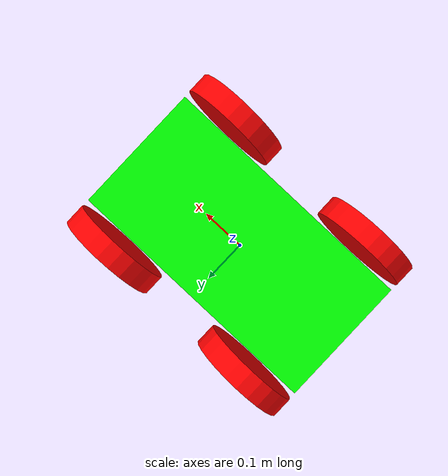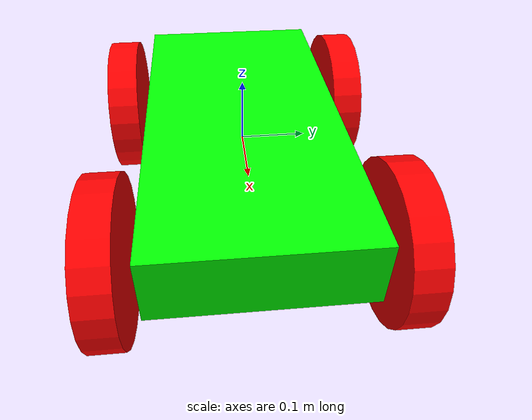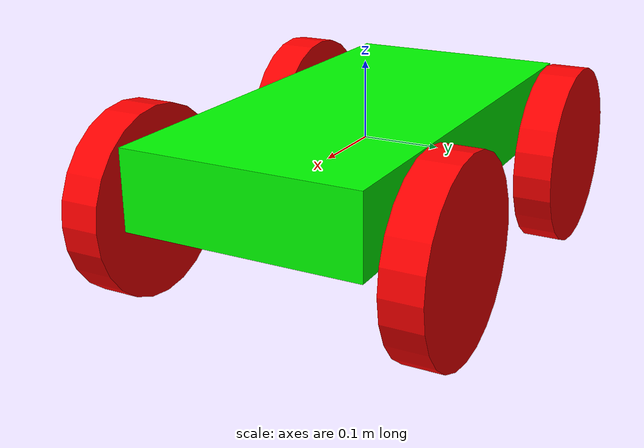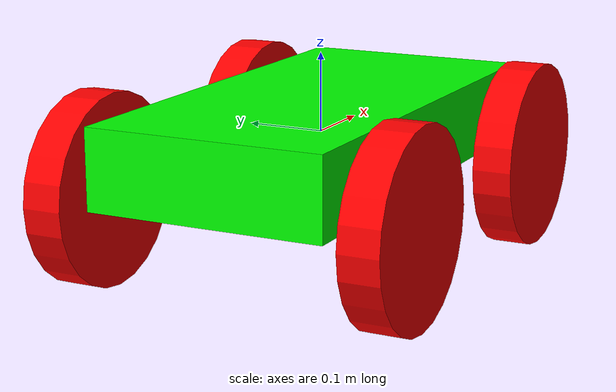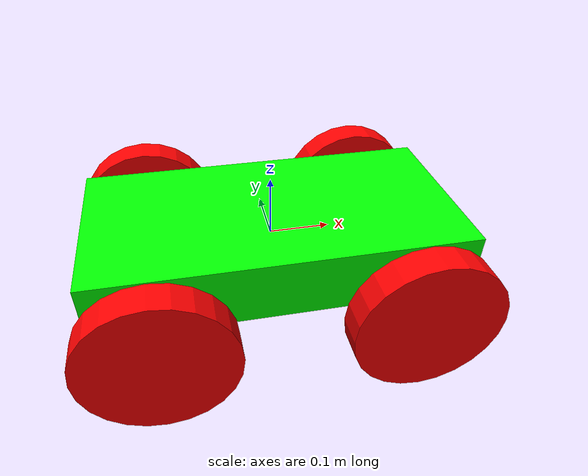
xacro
<?xml version="1.0"?>
<robot xmlns:xacro="http://www.ros.org/wiki/xacro">
    <xacro:include filename="colors.xacro" />
    <!-- xacro:include filename="inertial_macros.xacro" / -->

    <xacro:property name="wheel_radius" value="0.12" />
    <xacro:property name="wheel_length" value="0.05" />
    <xacro:property name="wheel_color_name" value="red" />
    <xacro:property name="wheel_color_rgb" value="1 0 0 1" />

    <xacro:macro name="box_link" params="name size color color_rgb mass mass_x mass_y mass_z" >
        <link name="${name}">
            <visual>
                <geometry>
                    <box size="${size}"/>
                </geometry>
                <material name="${color}">
                    <color rgba="${color_rgb}"/>
                </material>
            </visual>
            <collision>
                <origin xyz="${mass_x/2} ${mass_y/2} ${mass_z/2}" rpy="0 0 0"/>
                <geometry>
                    <box size="${size}"/>
                </geometry>
            </collision>
            <xacro:inertial_box mass="${mass}" x="${mass_x}" y="${mass_y}" z="${mass_z}">
                <origin xyz="${mass_x} ${mass_y} ${mass_z}" rpy="0 0 0"/>
            </xacro:inertial_box>
        </link>
    </xacro:macro>

    <xacro:macro name="wheel" params="name mass">
        <link name="${name}">
            <visual>
                <geometry>
                    <cylinder radius="${wheel_radius}" length="${wheel_length}" />
                </geometry>
                <material name="${wheel_color_name}">
                    <color rgba="${wheel_color_rgb}"/>
                </material>
            </visual>
            <collision>
                <geometry>
                    <cylinder length="${wheel_length}" radius="${wheel_radius}" />/>
                </geometry>
                <material name="blue"/>
            </collision>
            <xacro:inertial_cylinder mass="${mass}" length="${wheel_length}" radius="${wheel_radius}">
                <origin xyz="0 0 0" rpy="0 0 0"/>
            </xacro:inertial_cylinder>
        </link>
    </xacro:macro>

    <xacro:macro name="wheel_joint" params="name parent child xyz ">
        <joint name="${name}" type="continuous">
            <parent link="${parent}" />
            <child link="${child}" />
            <origin xyz="${xyz}" rpy="${pi/2} 0 0"/>
            <axis rpy="0 0 0" xyz="0 0 1"/>
        </joint>
    </xacro:macro>

    <!-- Robot Description -->

    <!-- xacro:box_link name="base_link" size="0.6 0.3 0.1" color="red" color_rgb="0 1 0 1"
         mass="0.5" mass_x="0.3" mass_y="0.15" mass_z="0.05"/ -->
    <link name="base_link">
    </link>

    <xacro:box_link name="chassis" size="0.6 0.3 0.1" color="green" color_rgb="0 1 0 1"
         mass="0.5" mass_x="0.3" mass_y="0.15" mass_z="0.05"/>

    <joint name="chassis_joint" type="fixed">
        <parent link="base_link"/>
        <child link="chassis"/>
        <origin xyz="0 0 0"/>
    </joint>

    <joint name="base_footprint_joint" type="fixed">
        <parent link="base_link"/>
        <child link="base_footprint"/>
        <origin xyz="0 0 0"/>
    </joint>

    <link name="base_footprint">
    </link>

    <xacro:wheel name="right_wheel_frontside" mass="0.1" />
    <xacro:wheel_joint name="base_link_right_wheel_frontside" parent="base_link"
        child="right_wheel_frontside" xyz="0.2 -0.2 -0.05" />

    <xacro:wheel name="right_wheel_backside" mass="0.1" />
    <xacro:wheel_joint name="base_link_right_wheel_backside" parent="base_link"
        child="right_wheel_backside" xyz="-0.2 -0.2 -0.05" />

    <xacro:wheel name="left_wheel_frontside" mass="0.1" />
    <xacro:wheel_joint name="base_link_left_wheel_frontside" parent="base_link"
        child="left_wheel_frontside" xyz="0.2 0.2 -0.05" />

    <xacro:wheel name="left_wheel_backside" mass="0.1" />
    <xacro:wheel_joint name="base_link_left_wheel_backside" parent="base_link"
        child="left_wheel_backside" xyz="-0.2 0.2 -0.05" />

    <!-- Gazebo Colors -->
    <gazebo reference="chasis">
        <material>Gazebo/Green</material>
    </gazebo>
    <gazebo reference="right_wheel_frontside">
        <material>Gazebo/Red</material>
    </gazebo>
    <gazebo reference="right_wheel_backside">
        <material>Gazebo/Red</material>
    </gazebo>
    <gazebo reference="left_wheel_frontside">
        <material>Gazebo/Red</material>
    </gazebo>
    <gazebo reference="left_wheel_backside">
        <material>Gazebo/Red</material>
    </gazebo>

</robot>
